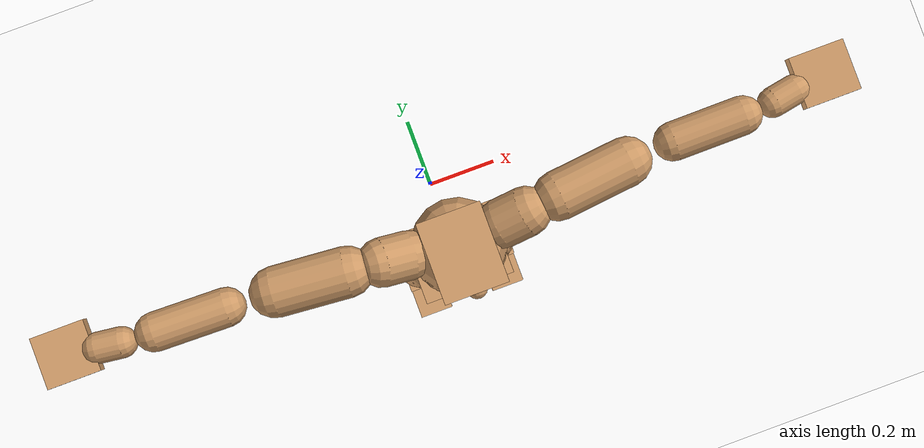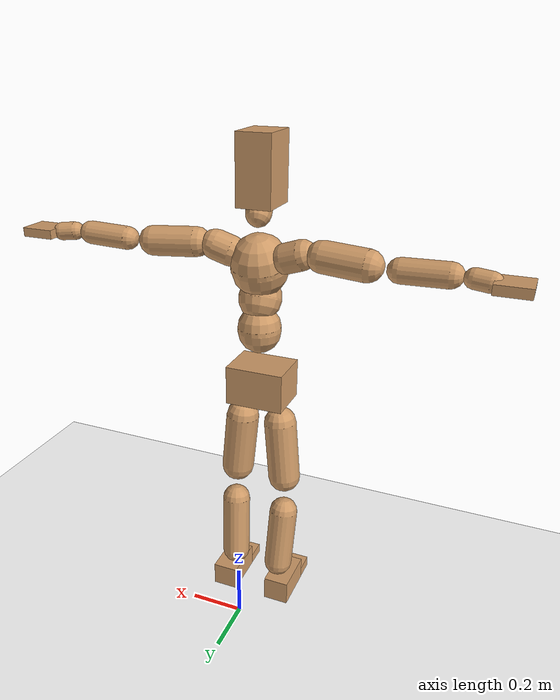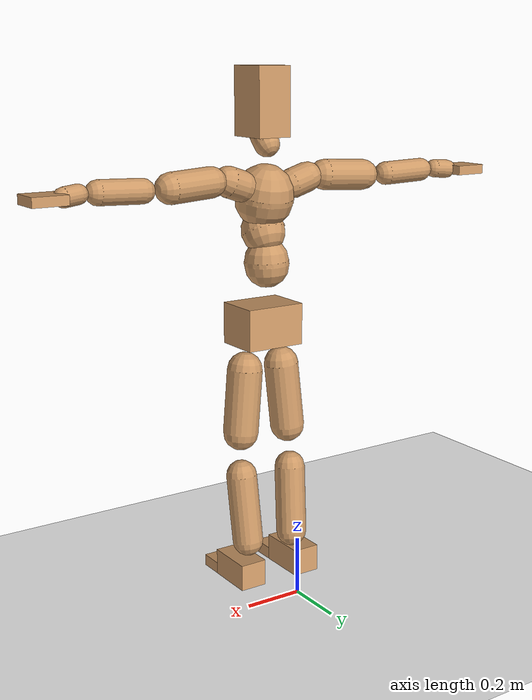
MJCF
<mujoco model="humanoid">
  <option integrator="implicitfast" />

  <visual>
    <global offwidth="1280" offheight="960" />
    <headlight active="1" ambient="0.34 0.34 0.34" diffuse="0.5 0.5 0.5" />
  </visual>

  <default>
    <joint damping="2" stiffness="2" armature="0.01" limited="true" solimplimit="0 .99 .01" />
    <geom condim="1" friction="0.7 0.005 0.0001" solimp=".99 .99 .003" solref="0.015 1" margin="0.001" rgba="0.8 0.6 .4 1" />
    <default class="smplcontact">
      <geom condim="3" friction="1. 0.005 0.0001" solref="0.015 1" solimp="0.98 0.98 0.001" priority="1" />
    </default>
    <default class="stiff_medium">
      <joint stiffness="10" />
    </default>
    <default class="stiff_medium_higher">
      <joint stiffness="50" />
    </default>
    <default class="stiff_high">
      <joint stiffness="100" />
    </default>
  </default>

  <asset>
    <texture type="skybox" builtin="gradient" rgb1="0.99 0.99 0.99" rgb2="0.608 0.828 0.892" width="100" />
    <texture builtin="flat" height="1278" mark="cross" markrgb="1 1 1" name="texgeom" random="0.01" rgb1="0.8 0.6 0.4" rgb2="0.8 0.6 0.4" type="cube" width="127" />
    <texture name="texplane" type="2d" builtin="checker" markrgb="1 1 1" rgb1="0.756 0.772 0.76" rgb2="0.6 0.6 0.6" width="100" height="100" />
    <material name="MatPlane" reflectance="0.5" texture="texplane" texrepeat="1 1" texuniform="true" />
    <material name="geom" texture="texgeom" texuniform="true" />
  </asset>

  <worldbody>
    <light name="tracking_light" pos="0 0 7" dir="0 0 -1" directional="true" cutoff="100" exponent="1" diffuse="1 1 1" specular="0.1 0.1 0.1" mode="trackcom" />
    <camera name="back" pos="0 3 2.4" xyaxes="-1 0 0 0 -1 2" mode="trackcom" />
    <camera name="side" pos="-3 0 2.4" xyaxes="0 -1 0 1 0 2" mode="trackcom" />
    <camera name="front_side" pos="-2.8 -2.8 0.8" xyaxes="0.5 -0.5 0 0.1 0.1 1" mode="trackcom" />
    <geom condim="3" name="floor" pos="0 0 0" rgba="1 1 1 1" size="100 100 .2" type="plane" material="MatPlane" />
    <body name="Pelvis" pos="-0.0018 -0.2233 0.9367" euler="90 0 0">
      <site name="Pelvis" size="0.01" />
      <freejoint name="Pelvis" />
      <geom type="box" pos="-0.0000 -0.0121 -0.0055" size="0.1069 0.0722 0.083" quat="1.0000 0.0000 0.0000 0.0000" density="3165.830099" name="Pelvis" />
      <body name="L_Hip" pos="0.0695 -0.0914 -0.0068">
        <joint name="L_Hip_x" type="hinge" pos="0 0 0" axis="1 0 0" stiffness="10.0" range="-160.0 22.92" class="stiff_medium" damping="15.0" armature="0.01"/>
        <joint name="L_Hip_y" type="hinge" pos="0 0 0" axis="0 1 0" stiffness="10.0" range="-70.0 70.0" class="stiff_medium" damping="10.000000000000004" armature="0.01000000000000001"/>
        <joint name="L_Hip_z" type="hinge" pos="0 0 0" axis="0 0 1" stiffness="10.0" range="-28.65 90.0" class="stiff_medium" damping="9.999999999999998" armature="0.009999999999999997"/>
        <geom type="capsule" density="2040.816327" fromto="0.0069 -0.075 -0.0009 0.0274 -0.3002 -0.0036" size="0.0615" name="L_Hip" />
        <body name="L_Knee" pos="0.0343 -0.3752 -0.0045">
          <joint name="L_Knee_x" type="hinge" pos="0 0 0" axis="1 0 0" range="-5.16 171.89" damping="7.999999999999999" armature="0.009999999999999998" stiffness="2.0"/>
          <joint name="L_Knee_y" type="hinge" pos="0 0 0" axis="0 1 0" range="-4.58 6.88" damping="8.000000000000005" armature="0.010000000000000016" stiffness="2.0"/>
          <joint name="L_Knee_z" type="hinge" pos="0 0 0" axis="0 0 1" range="-6.88 4.58" damping="7.999999999999995" armature="0.009999999999999988" stiffness="2.0"/>
          <geom type="capsule" density="1234.567901" fromto="-0.0027 -0.0796 -0.0087 -0.0109 -0.3184 -0.035" size="0.0541" name="L_Knee" />
          <body name="L_Ankle" pos="-0.0136 -0.398 -0.0437">
            <joint name="L_Ankle_x" type="hinge" pos="0 0 0" axis="1 0 0" range="-45.84 45.84" class="stiff_medium" damping="6.000000000000059" armature="0.010000000000000198" stiffness="10.0"/>
            <joint name="L_Ankle_y" type="hinge" pos="0 0 0" axis="0 1 0" range="-74.48 22.92" class="stiff_medium" damping="3.0" armature="0.010000000000000002" stiffness="10.0"/>
            <joint name="L_Ankle_z" type="hinge" pos="0 0 0" axis="0 0 1" range="-4.58 4.58" class="stiff_medium" damping="6.000000000000011" armature="0.010000000000000038" stiffness="10.0"/>
            <geom type="box" pos="0.0233 -0.0239 0.0242" size="0.0483 0.0464 0.085" quat="1.0000 0.0000 0.0000 0.0000" density="449.071558" name="L_Ankle" class="smplcontact" />
            <body name="L_Toe" pos="0.0264 -0.0558 0.1193">
              <joint name="L_Toe_x" type="hinge" pos="0 0 0" axis="1 0 0" range="-91.67 22.92" armature="0.009999999999999681" damping="1.999999999999968" stiffness="2.0"/>
              <joint name="L_Toe_y" type="hinge" pos="0 0 0" axis="0 1 0" range="-4.58 4.58" armature="0.009999999999999976" damping="1.9999999999999976" stiffness="2.0"/>
              <joint name="L_Toe_z" type="hinge" pos="0 0 0" axis="0 0 1" range="-4.58 4.58" armature="0.009999999999999034" damping="1.9999999999999032" stiffness="2.0"/>
              <geom type="box" pos="-0.003 0.0055 0.0248" size="0.0478 0.02 0.0496" quat="1.0000 0.0000 0.0000 0.0000" density="423.206892" name="L_Toe" class="smplcontact" />
            </body>
          </body>
        </body>
      </body>
      <body name="R_Hip" pos="-0.0677 -0.0905 -0.0043">
        <joint name="R_Hip_x" type="hinge" pos="0 0 0" axis="1 0 0" stiffness="10.0" range="-160.0 22.92" class="stiff_medium" damping="15.0" armature="0.01"/>
        <joint name="R_Hip_y" type="hinge" pos="0 0 0" axis="0 1 0" stiffness="10.0" range="-70.0 70.0" class="stiff_medium" damping="10.000000000000004" armature="0.01000000000000001"/>
        <joint name="R_Hip_z" type="hinge" pos="0 0 0" axis="0 0 1" stiffness="10.0" range="-90.0 28.65" class="stiff_medium" damping="9.999999999999998" armature="0.009999999999999997"/>
        <geom type="capsule" density="2040.816327" fromto="-0.0077 -0.0765 -0.0018 -0.0306 -0.3061 -0.0071" size="0.0606" name="R_Hip" />
        <body name="R_Knee" pos="-0.0383 -0.3826 -0.0089">
          <joint name="R_Knee_x" type="hinge" pos="0 0 0" axis="1 0 0" range="-5.16 171.89" damping="7.999999999999999" armature="0.009999999999999998" stiffness="2.0"/>
          <joint name="R_Knee_y" type="hinge" pos="0 0 0" axis="0 1 0" range="-6.88 4.58" damping="8.000000000000005" armature="0.010000000000000016" stiffness="2.0"/>
          <joint name="R_Knee_z" type="hinge" pos="0 0 0" axis="0 0 1" range="-4.58 6.88" damping="7.999999999999995" armature="0.009999999999999988" stiffness="2.0"/>
          <geom type="capsule" density="1234.567901" fromto="0.0032 -0.0797 -0.0085 0.0126 -0.3187 -0.0338" size="0.0541" name="R_Knee" />
          <body name="R_Ankle" pos="0.0158 -0.3984 -0.0423">
            <joint name="R_Ankle_x" type="hinge" pos="0 0 0" axis="1 0 0" range="-45.84 45.84" class="stiff_medium" damping="6.000000000000059" armature="0.010000000000000198" stiffness="10.0"/>
            <joint name="R_Ankle_y" type="hinge" pos="0 0 0" axis="0 1 0" range="-22.92 74.48" class="stiff_medium" damping="3.0" armature="0.010000000000000002" stiffness="10.0"/>
            <joint name="R_Ankle_z" type="hinge" pos="0 0 0" axis="0 0 1" range="-4.58 4.58" class="stiff_medium" damping="6.000000000000011" armature="0.010000000000000038" stiffness="10.0"/>
            <geom type="box" pos="-0.0212 -0.0174 0.0256" size="0.0483 0.0478 0.0865" quat="1.0000 0.0000 0.0000 0.0000" density="434.700981" name="R_Ankle" class="smplcontact" />
            <body name="R_Toe" pos="-0.0254 -0.0481 0.1233">
              <joint name="R_Toe_x" type="hinge" pos="0 0 0" axis="1 0 0" range="-91.67 22.92" armature="0.009999999999999681" damping="1.999999999999968" stiffness="2.0"/>
              <joint name="R_Toe_y" type="hinge" pos="0 0 0" axis="0 1 0" range="-4.58 4.58" armature="0.009999999999999976" damping="1.9999999999999976" stiffness="2.0"/>
              <joint name="R_Toe_z" type="hinge" pos="0 0 0" axis="0 0 1" range="-4.58 4.58" armature="0.009999999999999034" damping="1.9999999999999032" stiffness="2.0"/>
              <geom type="box" pos="0.0042 0.0045 0.0227" size="0.0479 0.0216 0.0493" quat="1.0000 0.0000 0.0000 0.0000" density="407.384095" name="R_Toe" class="smplcontact" />
            </body>
          </body>
        </body>
      </body>
      <body name="Torso" pos="-0.002875 0.12535 -0.030705">
        <joint name="Torso_x" type="hinge" pos="0 0 0" axis="1 0 0" range="-25.78 57.3" class="stiff_medium" damping="17.72491620114837" armature="0.012392842698545719" stiffness="11.267172045454545"/>
        <joint name="Torso_y" type="hinge" pos="0 0 0" axis="0 1 0" range="-57.3 57.3" class="stiff_high" damping="21.279301310856937" armature="0.009994875651502833" stiffness="113.26020454545454"/>
        <joint name="Torso_z" type="hinge" pos="0 0 0" axis="0 0 1" range="-34.38 34.38" class="stiff_high" damping="23.128868227977534" armature="0.011627221937846337" stiffness="115.01985348837206"/>
        <geom type="capsule" density="2040.816327" fromto="0.002875 0.06992 0.000575 0.00345 0.085445 0.00069" size="0.0769" name="Torso" />
        <body name="Spine" pos="0.006325 0.15548 0.001265">
          <joint name="Spine_x" type="hinge" pos="0 0 0" axis="1 0 0" stiffness="11.129223636363633" range="-25.78 57.3" class="stiff_medium" damping="17.197560328526198" armature="0.011810989833486458"/>
          <joint name="Spine_y" type="hinge" pos="0 0 0" axis="0 1 0" stiffness="11.183079772727272" range="-57.3 57.3" class="stiff_high" damping="8.456502774485596" armature="0.009991718603604658"/>
          <joint name="Spine_z" type="hinge" pos="0 0 0" axis="0 0 1" stiffness="22.05546863636364" range="-34.38 34.38" class="stiff_high" damping="13.135512683734003" armature="0.010865388755687688"/>
          <geom type="capsule" density="2040.816327" fromto="0.000805 0.02737 0.01311 0.00092 0.033465 0.0161" size="0.0755" name="Spine" />
          <body name="Chest" pos="0.001725 0.060835 0.02921">
            <joint name="Chest_x" type="hinge" pos="0 0 0" axis="1 0 0" stiffness="10.83178590909091" range="-25.78 57.3" class="stiff_medium" damping="16.723871062163475" armature="0.011476013103214524"/>
            <joint name="Chest_y" type="hinge" pos="0 0 0" axis="0 1 0" stiffness="10.519867906976746" range="-57.3 57.3" class="stiff_high" damping="8.211411425847192" armature="0.010014871117080557"/>
            <joint name="Chest_z" type="hinge" pos="0 0 0" axis="0 0 1" stiffness="21.77326136363636" range="-34.38 34.38" class="stiff_high" damping="12.866518174639289" armature="0.010560052889688185"/>
            <geom type="capsule" density="2040.816327" fromto="-0.001035 0.07843 -0.019895 -0.00115 0.095795 -0.02438" size="0.1002" name="Chest" />
            <body name="Neck" pos="-0.00322 0.245985 -0.049335">
              <joint name="Neck_x" type="hinge" pos="0 0 0" axis="1 0 0" range="-28.65 57.3" class="stiff_medium_higher" damping="10.111427307806542" armature="0.010045366771469697" stiffness="50.889611363636355"/>
              <joint name="Neck_y" type="hinge" pos="0 0 0" axis="0 1 0" range="-40.11 40.11" class="stiff_medium_higher" damping="10.131464286897868" armature="0.010123977973288815" stiffness="50.69478068181819"/>
              <joint name="Neck_z" type="hinge" pos="0 0 0" axis="0 0 1" range="-40.11 40.11" class="stiff_medium_higher" damping="10.050149521444636" armature="0.01003167556383697" stiffness="50.3432875"/>
              <geom type="capsule" density="1000" fromto="0.00115 0.01495 0.011845 0.004715 0.0598 0.047265" size="0.0436" name="Neck" />
              <body name="Head" pos="0.0052 0.065 0.0513">
                <joint name="Head_x" type="hinge" pos="0 0 0" axis="1 0 0" range="-28.65 57.3" class="stiff_medium_higher" damping="2.000000000000001" armature="0.010000000000000009" stiffness="50.0"/>
                <joint name="Head_y" type="hinge" pos="0 0 0" axis="0 1 0" range="-40.11 40.11" class="stiff_medium_higher" damping="2.0" armature="0.01" stiffness="50.0"/>
                <joint name="Head_z" type="hinge" pos="0 0 0" axis="0 0 1" range="-40.11 40.11" class="stiff_medium_higher" damping="1.9999999999999931" armature="0.009999999999999933" stiffness="50.0"/>
                <geom type="box" pos="-0.0042 0.0876 -0.0116" size="0.0606 0.1154 0.076" quat="1.0000 0.0000 0.0000 0.0000" density="1018.069894" name="Head" />
                <geom type="capsule" name="nose" size="0.02 0.01" pos="0 0.07 0.05" quat="1 0 0 0" mass="0" contype="0" conaffinity="0" />
              </body>
            </body>
            <body name="L_Thorax" pos="0.0788 0.1217 -0.0341">
              <joint name="L_Thorax_x" type="hinge" pos="0 0 0" axis="1 0 0" range="-10.89 4.58" class="stiff_medium_higher" damping="20.000000000000007" armature="0.010000000000000009" stiffness="50.0"/>
              <joint name="L_Thorax_y" type="hinge" pos="0 0 0" axis="0 1 0" range="-28.65 17.19" class="stiff_medium_higher" damping="20.0" armature="0.010000000000000002" stiffness="50.0"/>
              <joint name="L_Thorax_z" type="hinge" pos="0 0 0" axis="0 0 1" range="-31.51 40.11" class="stiff_medium_higher" damping="20.0" armature="0.01" stiffness="50.0"/>
              <geom type="capsule" density="1000" fromto="0.0182 0.0061 -0.0018 0.0728 0.0244 -0.0071" size="0.0521" name="L_Thorax" />
              <body name="L_Shoulder" pos="0.091 0.0305 -0.0089">
                <joint name="L_Shoulder_x" type="hinge" pos="0 0 0" axis="1 0 0" range="-97.4 97.4" class="stiff_medium" damping="6.000000000000025" armature="0.010000000000000085" stiffness="10.0"/>
                <joint name="L_Shoulder_y" type="hinge" pos="0 0 0" axis="0 1 0" range="-108.86 80.21" class="stiff_medium" damping="6.0" armature="0.01" stiffness="10.0"/>
                <joint name="L_Shoulder_z" type="hinge" pos="0 0 0" axis="0 0 1" range="-97.4 85.94" class="stiff_medium" damping="6.000000000000002" armature="0.010000000000000007" stiffness="10.0"/>
                <geom type="capsule" density="1000" fromto="0.0519 -0.0026 -0.0055 0.2077 -0.0102 -0.022" size="0.0517" name="L_Shoulder" />
                <body name="L_Elbow" pos="0.2596 -0.0128 -0.0275">
                  <joint name="L_Elbow_x" type="hinge" pos="0 0 0" axis="1 0 0" range="-17.19 4.58" damping="4.999999999999837" armature="0.009999999999999344" stiffness="2.0"/>
                  <joint name="L_Elbow_y" type="hinge" pos="0 0 0" axis="0 1 0" range="-180.0 17.19" damping="5.000000000000007" armature="0.010000000000000026" stiffness="2.0"/>
                  <joint name="L_Elbow_z" type="hinge" pos="0 0 0" axis="0 0 1" range="-100.84 4.58" damping="4.999999999999999" armature="0.009999999999999998" stiffness="2.0"/>
                  <geom type="capsule" density="1000" fromto="0.0498 0.0018 -0.0002 0.1994 0.0072 -0.0009" size="0.0405" name="L_Elbow" />
                  <body name="L_Wrist" pos="0.2492 0.009 -0.0012">
                    <joint name="L_Wrist_x" type="hinge" pos="0 0 0" axis="1 0 0" range="-180.0 22.92" armature="0.009999999999999681" damping="1.999999999999968" stiffness="2.0"/>
                    <joint name="L_Wrist_y" type="hinge" pos="0 0 0" axis="0 1 0" range="-17.19 17.19" armature="0.010000000000000057" damping="2.0000000000000058" stiffness="2.0"/>
                    <joint name="L_Wrist_z" type="hinge" pos="0 0 0" axis="0 0 1" range="-22.92 22.92" armature="0.009999999999999952" damping="1.9999999999999951" stiffness="2.0"/>
                    <geom type="capsule" density="1000" fromto="0.0168 -0.0016 -0.003 0.0672 -0.0065 -0.012" size="0.0318" name="L_Wrist" class="smplcontact" />
                    <body name="L_Hand" pos="0.084 -0.0082 -0.0149">
                      <joint name="L_Hand_x" type="hinge" pos="0 0 0" axis="1 0 0" range="-17.19 17.19" armature="0.009999999999999816" damping="1.9999999999999816" stiffness="2.0"/>
                      <joint name="L_Hand_y" type="hinge" pos="0 0 0" axis="0 1 0" range="-51.57 51.57" armature="0.010000000000000153" damping="2.000000000000015" stiffness="2.0"/>
                      <joint name="L_Hand_z" type="hinge" pos="0 0 0" axis="0 0 1" range="-91.67 91.67" armature="0.010000000000000276" damping="2.0000000000000275" stiffness="2.0"/>
                      <geom type="box" pos="0.0493 0.001 -0.0058" size="0.0585 0.0158 0.0538" quat="1.0000 0.0000 0.0000 0.0000" density="400.552564" name="L_Hand" class="smplcontact" />
                    </body>
                  </body>
                </body>
              </body>
            </body>
            <body name="R_Thorax" pos="-0.0818 0.1188 -0.0386">
              <joint name="R_Thorax_x" type="hinge" pos="0 0 0" axis="1 0 0" range="-10.89 4.58" class="stiff_medium_higher" damping="20.000000000000007" armature="0.010000000000000009" stiffness="50.0"/>
              <joint name="R_Thorax_y" type="hinge" pos="0 0 0" axis="0 1 0" range="-17.19 28.65" class="stiff_medium_higher" damping="20.0" armature="0.010000000000000002" stiffness="50.0"/>
              <joint name="R_Thorax_z" type="hinge" pos="0 0 0" axis="0 0 1" range="-40.11 31.51" class="stiff_medium_higher" damping="20.0" armature="0.01" stiffness="50.0"/>
              <geom type="capsule" density="1000" fromto="-0.0192 0.0065 -0.0018 -0.0768 0.026 -0.0073" size="0.0511" name="R_Thorax" />
              <body name="R_Shoulder" pos="-0.096 0.0326 -0.0091">
                <joint name="R_Shoulder_x" type="hinge" pos="0 0 0" axis="1 0 0" range="-97.4 97.4" class="stiff_medium" damping="6.000000000000025" armature="0.010000000000000085" stiffness="10.0"/>
                <joint name="R_Shoulder_y" type="hinge" pos="0 0 0" axis="0 1 0" range="-80.21 108.86" class="stiff_medium" damping="6.0" armature="0.01" stiffness="10.0"/>
                <joint name="R_Shoulder_z" type="hinge" pos="0 0 0" axis="0 0 1" range="-85.94 97.4" class="stiff_medium" damping="6.000000000000002" armature="0.010000000000000007" stiffness="10.0"/>
                <geom type="capsule" density="1000" fromto="-0.0507 -0.0027 -0.0043 -0.203 -0.0107 -0.0171" size="0.0531" name="R_Shoulder" />
                <body name="R_Elbow" pos="-0.2537 -0.0133 -0.0214">
                  <joint name="R_Elbow_x" type="hinge" pos="0 0 0" axis="1 0 0" range="-17.19 4.58" damping="4.999999999999837" armature="0.009999999999999344" stiffness="2.0"/>
                  <joint name="R_Elbow_y" type="hinge" pos="0 0 0" axis="0 1 0" range="-17.19 180.0" damping="5.000000000000007" armature="0.010000000000000026" stiffness="2.0"/>
                  <joint name="R_Elbow_z" type="hinge" pos="0 0 0" axis="0 0 1" range="-4.58 100.84" damping="4.999999999999999" armature="0.009999999999999998" stiffness="2.0"/>
                  <geom type="capsule" density="1000" fromto="-0.0511 0.0016 -0.0011 -0.2042 0.0062 -0.0044" size="0.0408" name="R_Elbow" />
                  <body name="R_Wrist" pos="-0.2553 0.0078 -0.0056">
                    <joint name="R_Wrist_x" type="hinge" pos="0 0 0" axis="1 0 0" range="-180.0 22.92" armature="0.009999999999999681" damping="1.999999999999968" stiffness="2.0"/>
                    <joint name="R_Wrist_y" type="hinge" pos="0 0 0" axis="0 1 0" range="-17.19 17.19" armature="0.010000000000000057" damping="2.0000000000000058" stiffness="2.0"/>
                    <joint name="R_Wrist_z" type="hinge" pos="0 0 0" axis="0 0 1" range="-22.92 22.92" armature="0.009999999999999952" damping="1.9999999999999951" stiffness="2.0"/>
                    <geom type="capsule" density="1000" fromto="-0.0169 -0.0012 -0.0021 -0.0677 -0.0049 -0.0083" size="0.0326" name="R_Wrist" class="smplcontact" />
                    <body name="R_Hand" pos="-0.0846 -0.0061 -0.0103">
                      <joint name="R_Hand_x" type="hinge" pos="0 0 0" axis="1 0 0" range="-17.19 17.19" armature="0.009999999999999816" damping="1.9999999999999816" stiffness="2.0"/>
                      <joint name="R_Hand_y" type="hinge" pos="0 0 0" axis="0 1 0" range="-51.57 51.57" armature="0.010000000000000153" damping="2.000000000000015" stiffness="2.0"/>
                      <joint name="R_Hand_z" type="hinge" pos="0 0 0" axis="0 0 1" range="-91.67 91.67" armature="0.010000000000000276" damping="2.0000000000000275" stiffness="2.0"/>
                      <geom type="box" pos="-0.0462 -0.0009 -0.0079" size="0.0569 0.0164 0.0546" quat="1.0000 0.0000 0.0000 0.0000" density="403.679611" name="R_Hand" class="smplcontact" />
                    </body>
                  </body>
                </body>
              </body>
            </body>
          </body>
        </body>
      </body>
    </body>
  </worldbody>
  <actuator>
    <general name="L_Hip_x" joint="L_Hip_x" biastype="affine" gainprm="287.33006409732246" biasprm="-215.3247604770444 -180.0 -2.0" ctrllimited="true" ctrlrange="-1 1" forcerange="-360.0 360.0" />
    <general name="L_Hip_y" joint="L_Hip_y" biastype="affine" gainprm="219.9114857512855" biasprm="0.0 -180.0 -2.000000000000001" ctrllimited="true" ctrlrange="-1 1" forcerange="-360.0 360.0" />
    <general name="L_Hip_z" joint="L_Hip_z" biastype="affine" gainprm="186.3749841742145" biasprm="96.3683546488669 -180.0 -1.9999999999999996" ctrllimited="true" ctrlrange="-1 1" forcerange="-360.0 360.0" />
    <general name="L_Knee_x" joint="L_Knee_x" biastype="affine" gainprm="278.10948965903646" biasprm="261.8988715665131 -180.0 -1.9999999999999998" ctrllimited="true" ctrlrange="-1 1" forcerange="-360.0 360.0" />
    <general name="L_Knee_y" joint="L_Knee_y" biastype="affine" gainprm="18.001325905069514" biasprm="3.612831551628262 -180.0 -2.0000000000000013" ctrllimited="true" ctrlrange="-1 1" forcerange="-360.0 360.0" />
    <general name="L_Knee_z" joint="L_Knee_z" biastype="affine" gainprm="18.001325905069514" biasprm="-3.612831551628262 -180.0 -1.9999999999999987" ctrllimited="true" ctrlrange="-1 1" forcerange="-360.0 360.0" />
    <general name="L_Ankle_x" joint="L_Ankle_x" biastype="affine" gainprm="72.00530362027807" biasprm="0.0 -90.0 -2.0000000000000195" ctrllimited="true" ctrlrange="-1 1" forcerange="-180.0 180.0" />
    <general name="L_Ankle_y" joint="L_Ankle_y" biastype="affine" gainprm="76.49778111491148" biasprm="-40.49512930477244 -90.0 -2.0" ctrllimited="true" ctrlrange="-1 1" forcerange="-180.0 180.0" />
    <general name="L_Ankle_z" joint="L_Ankle_z" biastype="affine" gainprm="7.1942471767206255" biasprm="0.0 -90.0 -2.0000000000000036" ctrllimited="true" ctrlrange="-1 1" forcerange="-180.0 180.0" />
    <general name="L_Toe_x" joint="L_Toe_x" biastype="affine" gainprm="71.99902043497087" biasprm="-43.19689898685965 -72.0 -0.7999999999999873" ctrllimited="true" ctrlrange="-1 1" forcerange="-144.0 144.0" />
    <general name="L_Toe_y" joint="L_Toe_y" biastype="affine" gainprm="5.755397741376501" biasprm="0.0 -72.0 -0.799999999999999" ctrllimited="true" ctrlrange="-1 1" forcerange="-144.0 144.0" />
    <general name="L_Toe_z" joint="L_Toe_z" biastype="affine" gainprm="5.755397741376501" biasprm="0.0 -72.0 -0.7999999999999613" ctrllimited="true" ctrlrange="-1 1" forcerange="-144.0 144.0" />
    <general name="R_Hip_x" joint="R_Hip_x" biastype="affine" gainprm="287.33006409732246" biasprm="-215.3247604770444 -180.0 -2.0" ctrllimited="true" ctrlrange="-1 1" forcerange="-360.0 360.0" />
    <general name="R_Hip_y" joint="R_Hip_y" biastype="affine" gainprm="219.9114857512855" biasprm="0.0 -180.0 -2.000000000000001" ctrllimited="true" ctrlrange="-1 1" forcerange="-360.0 360.0" />
    <general name="R_Hip_z" joint="R_Hip_z" biastype="affine" gainprm="186.3749841742145" biasprm="-96.3683546488669 -180.0 -1.9999999999999996" ctrllimited="true" ctrlrange="-1 1" forcerange="-360.0 360.0" />
    <general name="R_Knee_x" joint="R_Knee_x" biastype="affine" gainprm="278.10948965903646" biasprm="261.8988715665131 -180.0 -1.9999999999999998" ctrllimited="true" ctrlrange="-1 1" forcerange="-360.0 360.0" />
    <general name="R_Knee_y" joint="R_Knee_y" biastype="affine" gainprm="18.001325905069514" biasprm="-3.612831551628262 -180.0 -2.0000000000000013" ctrllimited="true" ctrlrange="-1 1" forcerange="-360.0 360.0" />
    <general name="R_Knee_z" joint="R_Knee_z" biastype="affine" gainprm="18.001325905069514" biasprm="3.612831551628262 -180.0 -1.9999999999999987" ctrllimited="true" ctrlrange="-1 1" forcerange="-360.0 360.0" />
    <general name="R_Ankle_x" joint="R_Ankle_x" biastype="affine" gainprm="72.00530362027807" biasprm="0.0 -90.0 -2.0000000000000195" ctrllimited="true" ctrlrange="-1 1" forcerange="-180.0 180.0" />
    <general name="R_Ankle_y" joint="R_Ankle_y" biastype="affine" gainprm="76.49778111491148" biasprm="40.49512930477244 -90.0 -2.0" ctrllimited="true" ctrlrange="-1 1" forcerange="-180.0 180.0" />
    <general name="R_Ankle_z" joint="R_Ankle_z" biastype="affine" gainprm="7.1942471767206255" biasprm="0.0 -90.0 -2.0000000000000036" ctrllimited="true" ctrlrange="-1 1" forcerange="-180.0 180.0" />
    <general name="R_Toe_x" joint="R_Toe_x" biastype="affine" gainprm="71.99902043497087" biasprm="-43.19689898685965 -72.0 -0.7999999999999873" ctrllimited="true" ctrlrange="-1 1" forcerange="-144.0 144.0" />
    <general name="R_Toe_y" joint="R_Toe_y" biastype="affine" gainprm="5.755397741376501" biasprm="0.0 -72.0 -0.799999999999999" ctrllimited="true" ctrlrange="-1 1" forcerange="-144.0 144.0" />
    <general name="R_Toe_z" joint="R_Toe_z" biastype="affine" gainprm="5.755397741376501" biasprm="0.0 -72.0 -0.7999999999999613" ctrllimited="true" ctrlrange="-1 1" forcerange="-144.0 144.0" />
    <general name="Torso_x" joint="Torso_x" biastype="affine" gainprm="196.0514358631172" biasprm="74.38061216183742 -270.4121290909091 -4.7266443203062325" ctrllimited="true" ctrlrange="-1 1" forcerange="-405.6181936363636 405.6181936363636" />
    <general name="Torso_y" joint="Torso_y" biastype="affine" gainprm="271.844513879675" biasprm="0.0 -271.82449090909085 -4.255860262171387" ctrllimited="true" ctrlrange="-1 1" forcerange="-407.73673636363634 407.73673636363634" />
    <general name="Torso_z" joint="Torso_z" biastype="affine" gainprm="165.6407894558026" biasprm="0.0 -276.04764837209297 -4.6257736455955065" ctrllimited="true" ctrlrange="-1 1" forcerange="-414.0714725581395 414.0714725581395" />
    <general name="Spine_x" joint="Spine_x" biastype="affine" gainprm="193.65110119455977" biasprm="73.4699411368864 -267.1013672727272 -4.586016087606986" ctrllimited="true" ctrlrange="-1 1" forcerange="-400.65205090909086 400.65205090909086" />
    <general name="Spine_y" joint="Spine_y" biastype="affine" gainprm="268.41368481500575" biasprm="0.0 -268.3939145454545 -4.228251387242798" ctrllimited="true" ctrlrange="-1 1" forcerange="-402.59087181818177 402.59087181818177" />
    <general name="Spine_z" joint="Spine_z" biastype="affine" gainprm="158.8110715648884" biasprm="0.0 -264.66562363636365 -4.378504227911335" ctrllimited="true" ctrlrange="-1 1" forcerange="-396.9984354545455 396.9984354545455" />
    <general name="Chest_x" joint="Chest_x" biastype="affine" gainprm="188.47561498768988" biasprm="71.50639605695696 -259.9628618181818 -4.45969894991026" ctrllimited="true" ctrlrange="-1 1" forcerange="-389.94429272727274 389.94429272727274" />
    <general name="Chest_y" joint="Chest_y" biastype="affine" gainprm="252.49542756235985" biasprm="0.0 -252.4768297674419 -4.105705712923596" ctrllimited="true" ctrlrange="-1 1" forcerange="-378.71524465116283 378.71524465116283" />
    <general name="Chest_z" joint="Chest_z" biastype="affine" gainprm="156.7790295292306" biasprm="0.0 -261.2791363636363 -4.288839391546429" ctrllimited="true" ctrlrange="-1 1" forcerange="-391.91870454545455 391.91870454545455" />
    <general name="Neck_x" joint="Neck_x" biastype="affine" gainprm="27.48241438017441" biasprm="9.16080479339147 -36.640520181818175 -0.8089141846245234" ctrllimited="true" ctrlrange="-1 1" forcerange="-73.28104036363635 73.28104036363635" />
    <general name="Neck_y" joint="Neck_y" biastype="affine" gainprm="25.552051524704076" biasprm="0.0 -36.5002420909091 -0.8105171429518295" ctrllimited="true" ctrlrange="-1 1" forcerange="-73.0004841818182 73.0004841818182" />
    <general name="Neck_z" joint="Neck_z" biastype="affine" gainprm="25.374885911763144" biasprm="0.0 -36.247167 -0.8040119617155709" ctrllimited="true" ctrlrange="-1 1" forcerange="-72.494334 72.494334" />
    <general name="Head_x" joint="Head_x" biastype="affine" gainprm="18.001325905069514" biasprm="6.000441968356505 -24.0 -0.8000000000000004" ctrllimited="true" ctrlrange="-1 1" forcerange="-48.0 48.0" />
    <general name="Head_y" joint="Head_y" biastype="affine" gainprm="16.801237511398213" biasprm="0.0 -24.0 -0.8" ctrllimited="true" ctrlrange="-1 1" forcerange="-48.0 48.0" />
    <general name="Head_z" joint="Head_z" biastype="affine" gainprm="16.801237511398213" biasprm="0.0 -24.0 -0.7999999999999973" ctrllimited="true" ctrlrange="-1 1" forcerange="-48.0 48.0" />
    <general name="L_Thorax_x" joint="L_Thorax_x" biastype="affine" gainprm="16.200146117011364" biasprm="-6.6078165480505335 -120.0 -1.6000000000000008" ctrllimited="true" ctrlrange="-1 1" forcerange="-240.0 240.0" />
    <general name="L_Thorax_y" joint="L_Thorax_y" biastype="affine" gainprm="48.00353574685204" biasprm="-12.00088393671301 -120.0 -1.6" ctrllimited="true" ctrlrange="-1 1" forcerange="-240.0 240.0" />
    <general name="L_Thorax_z" joint="L_Thorax_z" biastype="affine" gainprm="75.00028861670033" biasprm="9.00589894029074 -120.0 -1.6" ctrllimited="true" ctrlrange="-1 1" forcerange="-240.0 240.0" />
    <general name="L_Shoulder_x" joint="L_Shoulder_x" biastype="affine" gainprm="81.5976331892389" biasprm="0.0 -48.0 -1.6000000000000068" ctrllimited="true" ctrlrange="-1 1" forcerange="-96.0 96.0" />
    <general name="L_Shoulder_y" joint="L_Shoulder_y" biastype="affine" gainprm="79.19745640189629" biasprm="-12.00088393671301 -48.0 -1.6" ctrllimited="true" ctrlrange="-1 1" forcerange="-96.0 96.0" />
    <general name="L_Shoulder_z" joint="L_Shoulder_z" biastype="affine" gainprm="76.79727961455369" biasprm="-4.800353574685214 -48.0 -1.6000000000000005" ctrllimited="true" ctrlrange="-1 1" forcerange="-96.0 96.0" />
    <general name="L_Elbow_x" joint="L_Elbow_x" biastype="affine" gainprm="13.67849441372996" biasprm="-7.923096672353461 -72.0 -0.7999999999999738" ctrllimited="true" ctrlrange="-1 1" forcerange="-144.0 144.0" />
    <general name="L_Elbow_y" joint="L_Elbow_y" biastype="affine" gainprm="123.89813107227425" biasprm="-102.29653998619085 -72.0 -0.8000000000000012" ctrllimited="true" ctrlrange="-1 1" forcerange="-144.0 144.0" />
    <general name="L_Elbow_z" joint="L_Elbow_z" biastype="affine" gainprm="66.23733950828719" biasprm="-60.4819417669107 -72.0 -0.7999999999999999" ctrllimited="true" ctrlrange="-1 1" forcerange="-144.0 144.0" />
    <general name="L_Wrist_x" joint="L_Wrist_x" biastype="affine" gainprm="21.24973270888136" biasprm="-16.449379134196157 -12.0 -0.7999999999999873" ctrllimited="true" ctrlrange="-1 1" forcerange="-24.0 24.0" />
    <general name="L_Wrist_y" joint="L_Wrist_y" biastype="affine" gainprm="3.6002651810139037" biasprm="0.0 -12.0 -0.8000000000000024" ctrllimited="true" ctrlrange="-1 1" forcerange="-24.0 24.0" />
    <general name="L_Wrist_z" joint="L_Wrist_z" biastype="affine" gainprm="4.800353574685205" biasprm="0.0 -12.0 -0.799999999999998" ctrllimited="true" ctrlrange="-1 1" forcerange="-24.0 24.0" />
    <general name="L_Hand_x" joint="L_Hand_x" biastype="affine" gainprm="3.6002651810139037" biasprm="0.0 -12.0 -0.7999999999999927" ctrllimited="true" ctrlrange="-1 1" forcerange="-24.0 24.0" />
    <general name="L_Hand_y" joint="L_Hand_y" biastype="affine" gainprm="10.800795543041708" biasprm="0.0 -12.0 -0.800000000000006" ctrllimited="true" ctrlrange="-1 1" forcerange="-24.0 24.0" />
    <general name="L_Hand_z" joint="L_Hand_z" biastype="affine" gainprm="19.199319903638422" biasprm="0.0 -12.0 -0.800000000000011" ctrllimited="true" ctrlrange="-1 1" forcerange="-24.0 24.0" />
    <general name="R_Thorax_x" joint="R_Thorax_x" biastype="affine" gainprm="16.200146117011364" biasprm="-6.6078165480505335 -120.0 -1.6000000000000008" ctrllimited="true" ctrlrange="-1 1" forcerange="-240.0 240.0" />
    <general name="R_Thorax_y" joint="R_Thorax_y" biastype="affine" gainprm="48.00353574685204" biasprm="12.000883936713002 -120.0 -1.6" ctrllimited="true" ctrlrange="-1 1" forcerange="-240.0 240.0" />
    <general name="R_Thorax_z" joint="R_Thorax_z" biastype="affine" gainprm="75.00028861670033" biasprm="-9.00589894029074 -120.0 -1.6" ctrllimited="true" ctrlrange="-1 1" forcerange="-240.0 240.0" />
    <general name="R_Shoulder_x" joint="R_Shoulder_x" biastype="affine" gainprm="81.5976331892389" biasprm="0.0 -48.0 -1.6000000000000068" ctrllimited="true" ctrlrange="-1 1" forcerange="-96.0 96.0" />
    <general name="R_Shoulder_y" joint="R_Shoulder_y" biastype="affine" gainprm="79.19745640189629" biasprm="12.00088393671301 -48.0 -1.6" ctrllimited="true" ctrlrange="-1 1" forcerange="-96.0 96.0" />
    <general name="R_Shoulder_z" joint="R_Shoulder_z" biastype="affine" gainprm="76.79727961455369" biasprm="4.800353574685204 -48.0 -1.6000000000000005" ctrllimited="true" ctrlrange="-1 1" forcerange="-96.0 96.0" />
    <general name="R_Elbow_x" joint="R_Elbow_x" biastype="affine" gainprm="13.67849441372996" biasprm="-7.923096672353461 -72.0 -0.7999999999999738" ctrllimited="true" ctrlrange="-1 1" forcerange="-144.0 144.0" />
    <general name="R_Elbow_y" joint="R_Elbow_y" biastype="affine" gainprm="123.89813107227425" biasprm="102.29653998619085 -72.0 -0.8000000000000012" ctrllimited="true" ctrlrange="-1 1" forcerange="-144.0 144.0" />
    <general name="R_Elbow_z" joint="R_Elbow_z" biastype="affine" gainprm="66.23733950828719" biasprm="60.481941766910694 -72.0 -0.7999999999999999" ctrllimited="true" ctrlrange="-1 1" forcerange="-144.0 144.0" />
    <general name="R_Wrist_x" joint="R_Wrist_x" biastype="affine" gainprm="21.24973270888136" biasprm="-16.449379134196157 -12.0 -0.7999999999999873" ctrllimited="true" ctrlrange="-1 1" forcerange="-24.0 24.0" />
    <general name="R_Wrist_y" joint="R_Wrist_y" biastype="affine" gainprm="3.6002651810139037" biasprm="0.0 -12.0 -0.8000000000000024" ctrllimited="true" ctrlrange="-1 1" forcerange="-24.0 24.0" />
    <general name="R_Wrist_z" joint="R_Wrist_z" biastype="affine" gainprm="4.800353574685205" biasprm="0.0 -12.0 -0.799999999999998" ctrllimited="true" ctrlrange="-1 1" forcerange="-24.0 24.0" />
    <general name="R_Hand_x" joint="R_Hand_x" biastype="affine" gainprm="3.6002651810139037" biasprm="0.0 -12.0 -0.7999999999999927" ctrllimited="true" ctrlrange="-1 1" forcerange="-24.0 24.0" />
    <general name="R_Hand_y" joint="R_Hand_y" biastype="affine" gainprm="10.800795543041708" biasprm="0.0 -12.0 -0.800000000000006" ctrllimited="true" ctrlrange="-1 1" forcerange="-24.0 24.0" />
    <general name="R_Hand_z" joint="R_Hand_z" biastype="affine" gainprm="19.199319903638422" biasprm="0.0 -12.0 -0.800000000000011" ctrllimited="true" ctrlrange="-1 1" forcerange="-24.0 24.0" />
  </actuator>
  <contact>
    <exclude body1="Torso" body2="Chest" />
    <exclude body1="Head" body2="Chest" />
    <exclude body1="R_Knee" body2="R_Toe" />
    <exclude body1="R_Knee" body2="L_Ankle" />
    <exclude body1="R_Knee" body2="L_Toe" />
    <exclude body1="L_Knee" body2="L_Toe" />
    <exclude body1="L_Knee" body2="R_Ankle" />
    <exclude body1="L_Knee" body2="R_Toe" />
    <exclude body1="L_Shoulder" body2="Chest" />
    <exclude body1="R_Shoulder" body2="Chest" />
  </contact>
  <sensor>
    <framelinvel name="sensor_Pelvis_framelinvel" objtype="xbody" objname="Pelvis" />
    <framelinvel name="sensor_L_Hip_framelinvel" objtype="xbody" objname="L_Hip" />
    <framelinvel name="sensor_L_Knee_framelinvel" objtype="xbody" objname="L_Knee" />
    <framelinvel name="sensor_L_Ankle_framelinvel" objtype="xbody" objname="L_Ankle" />
    <framelinvel name="sensor_L_Toe_framelinvel" objtype="xbody" objname="L_Toe" />
    <framelinvel name="sensor_R_Hip_framelinvel" objtype="xbody" objname="R_Hip" />
    <framelinvel name="sensor_R_Knee_framelinvel" objtype="xbody" objname="R_Knee" />
    <framelinvel name="sensor_R_Ankle_framelinvel" objtype="xbody" objname="R_Ankle" />
    <framelinvel name="sensor_R_Toe_framelinvel" objtype="xbody" objname="R_Toe" />
    <framelinvel name="sensor_Torso_framelinvel" objtype="xbody" objname="Torso" />
    <framelinvel name="sensor_Spine_framelinvel" objtype="xbody" objname="Spine" />
    <framelinvel name="sensor_Chest_framelinvel" objtype="xbody" objname="Chest" />
    <framelinvel name="sensor_Neck_framelinvel" objtype="xbody" objname="Neck" />
    <framelinvel name="sensor_Head_framelinvel" objtype="xbody" objname="Head" />
    <framelinvel name="sensor_L_Thorax_framelinvel" objtype="xbody" objname="L_Thorax" />
    <framelinvel name="sensor_L_Shoulder_framelinvel" objtype="xbody" objname="L_Shoulder" />
    <framelinvel name="sensor_L_Elbow_framelinvel" objtype="xbody" objname="L_Elbow" />
    <framelinvel name="sensor_L_Wrist_framelinvel" objtype="xbody" objname="L_Wrist" />
    <framelinvel name="sensor_L_Hand_framelinvel" objtype="xbody" objname="L_Hand" />
    <framelinvel name="sensor_R_Thorax_framelinvel" objtype="xbody" objname="R_Thorax" />
    <framelinvel name="sensor_R_Shoulder_framelinvel" objtype="xbody" objname="R_Shoulder" />
    <framelinvel name="sensor_R_Elbow_framelinvel" objtype="xbody" objname="R_Elbow" />
    <framelinvel name="sensor_R_Wrist_framelinvel" objtype="xbody" objname="R_Wrist" />
    <framelinvel name="sensor_R_Hand_framelinvel" objtype="xbody" objname="R_Hand" />
    <frameangvel name="sensor_Pelvis_frameangvel" objtype="xbody" objname="Pelvis" />
    <frameangvel name="sensor_L_Hip_frameangvel" objtype="xbody" objname="L_Hip" />
    <frameangvel name="sensor_L_Knee_frameangvel" objtype="xbody" objname="L_Knee" />
    <frameangvel name="sensor_L_Ankle_frameangvel" objtype="xbody" objname="L_Ankle" />
    <frameangvel name="sensor_L_Toe_frameangvel" objtype="xbody" objname="L_Toe" />
    <frameangvel name="sensor_R_Hip_frameangvel" objtype="xbody" objname="R_Hip" />
    <frameangvel name="sensor_R_Knee_frameangvel" objtype="xbody" objname="R_Knee" />
    <frameangvel name="sensor_R_Ankle_frameangvel" objtype="xbody" objname="R_Ankle" />
    <frameangvel name="sensor_R_Toe_frameangvel" objtype="xbody" objname="R_Toe" />
    <frameangvel name="sensor_Torso_frameangvel" objtype="xbody" objname="Torso" />
    <frameangvel name="sensor_Spine_frameangvel" objtype="xbody" objname="Spine" />
    <frameangvel name="sensor_Chest_frameangvel" objtype="xbody" objname="Chest" />
    <frameangvel name="sensor_Neck_frameangvel" objtype="xbody" objname="Neck" />
    <frameangvel name="sensor_Head_frameangvel" objtype="xbody" objname="Head" />
    <frameangvel name="sensor_L_Thorax_frameangvel" objtype="xbody" objname="L_Thorax" />
    <frameangvel name="sensor_L_Shoulder_frameangvel" objtype="xbody" objname="L_Shoulder" />
    <frameangvel name="sensor_L_Elbow_frameangvel" objtype="xbody" objname="L_Elbow" />
    <frameangvel name="sensor_L_Wrist_frameangvel" objtype="xbody" objname="L_Wrist" />
    <frameangvel name="sensor_L_Hand_frameangvel" objtype="xbody" objname="L_Hand" />
    <frameangvel name="sensor_R_Thorax_frameangvel" objtype="xbody" objname="R_Thorax" />
    <frameangvel name="sensor_R_Shoulder_frameangvel" objtype="xbody" objname="R_Shoulder" />
    <frameangvel name="sensor_R_Elbow_frameangvel" objtype="xbody" objname="R_Elbow" />
    <frameangvel name="sensor_R_Wrist_frameangvel" objtype="xbody" objname="R_Wrist" />
    <frameangvel name="sensor_R_Hand_frameangvel" objtype="xbody" objname="R_Hand" />
    <subtreelinvel name="Chest_subtreelinvel" body="Chest" />
    <gyro name="Pelvis_gyro" site="Pelvis" />
  </sensor>
</mujoco>
